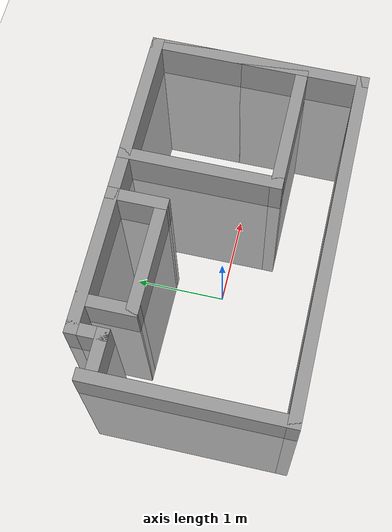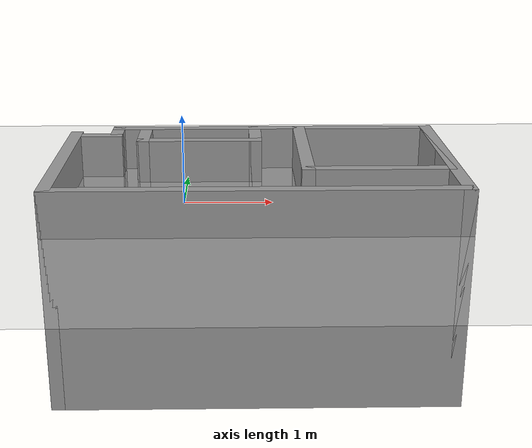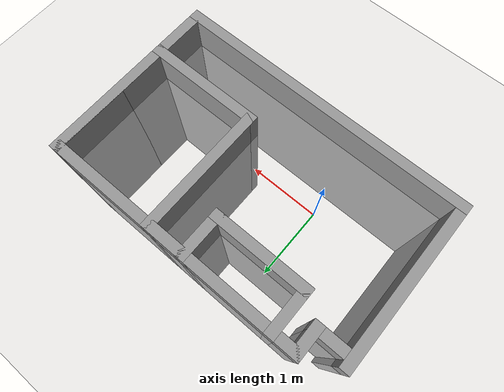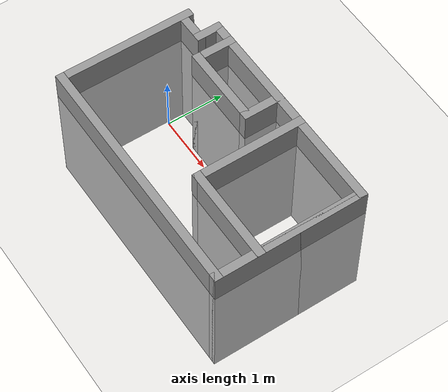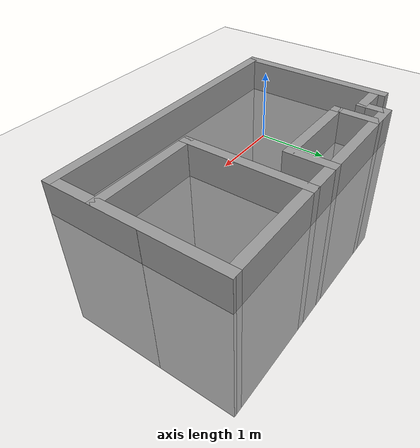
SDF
<sdf version="1.7">
 <world name="default">
  <light name="sun" type="directional">
   <pose>0 0 10 0 -0 0</pose>
   <diffuse>0.8 0.8 0.8 1</diffuse>
   <specular>0.2 0.2 0.2 1</specular>
   <attenuation>
    <range>1000</range>
    <constant>0.9</constant>
    <linear>0.01</linear>
    <quadratic>0.001</quadratic>
   </attenuation>
   <direction>-0.5 0.1 -0.9</direction>
   <spot><inner_angle>0</inner_angle><outer_angle>0</outer_angle><falloff>0</falloff></spot>
  </light>
  <model name="ground_plane">
   <static>1</static>
   <link name="link">
    <collision name="collision">
     <geometry><plane><normal>0 0 1</normal><size>100 100</size></plane></geometry>
     <surface>
      <contact><collide_bitmask>65535</collide_bitmask></contact>
      <friction><ode><mu>100</mu><mu2>50</mu2></ode></friction>
     </surface>
    </collision>
    <visual name="visual">
     <cast_shadows>0</cast_shadows>
     <geometry><plane><normal>0 0 1</normal><size>100 100</size></plane></geometry>
     <material>
      <script><uri>file://media/materials/scripts/gazebo.material</uri><name>Gazebo/Grey</name></script>
     </material>
    </visual>
   </link>
  </model>
  <gravity>0 0 -9.8</gravity>
  <magnetic_field>6e-06 2.3e-05 -4.2e-05</magnetic_field>
  <atmosphere type="adiabatic"/>
  <physics type="ode">
   <max_step_size>0.001</max_step_size>
   <real_time_factor>1</real_time_factor>
   <real_time_update_rate>1000</real_time_update_rate>
  </physics>
  <scene><ambient>0.4 0.4 0.4 1</ambient><background>0.7 0.7 0.7 1</background><shadows>1</shadows></scene>
  <spherical_coordinates>
   <surface_model>EARTH_WGS84</surface_model>
   <latitude_deg>0</latitude_deg>
   <longitude_deg>0</longitude_deg>
   <elevation>0</elevation>
   <heading_deg>0</heading_deg>
  </spherical_coordinates>
  <model name="halfapartment">
   <pose>0.802924 0.973567 -2 0 -0 0</pose>
   <link name="Wall_16">
    <collision name="Wall_16_Collision">
     <geometry><box><size>2 0.15 2.5</size></box></geometry>
     <pose>0 0 1.25 0 -0 0</pose>
    </collision>
    <visual name="Wall_16_Visual">
     <pose>0 0 1.25 0 -0 0</pose>
     <geometry><box><size>2 0.15 2.5</size></box></geometry>
     <material>
      <script><uri>file://media/materials/scripts/gazebo.material</uri><name>Gazebo/Grey</name></script>
      <ambient>1 1 1 1</ambient>
     </material>
     <meta><layer>0</layer></meta>
    </visual>
    <pose>2.175 -0.3925 0 0 -0 -1.5708</pose>
   </link>
   <link name="Wall_17">
    <collision name="Wall_17_Collision">
     <geometry><box><size>1.75 0.15 2.5</size></box></geometry>
     <pose>0 0 1.25 0 -0 0</pose>
    </collision>
    <visual name="Wall_17_Visual">
     <pose>0 0 1.25 0 -0 0</pose>
     <geometry><box><size>1.75 0.15 2.5</size></box></geometry>
     <material>
      <script><uri>file://media/materials/scripts/gazebo.material</uri><name>Gazebo/Grey</name></script>
      <ambient>1 1 1 1</ambient>
     </material>
     <meta><layer>0</layer></meta>
    </visual>
    <pose>1.375 -1.3175 0 0 -0 3.14159</pose>
   </link>
   <link name="Wall_18">
    <collision name="Wall_18_Collision">
     <geometry><box><size>2 0.15 2.5</size></box></geometry>
     <pose>0 0 1.25 0 -0 0</pose>
    </collision>
    <visual name="Wall_18_Visual">
     <pose>0 0 1.25 0 -0 0</pose>
     <geometry><box><size>2 0.15 2.5</size></box></geometry>
     <material>
      <script><uri>file://media/materials/scripts/gazebo.material</uri><name>Gazebo/Grey</name></script>
      <ambient>1 1 1 1</ambient>
     </material>
     <meta><layer>0</layer></meta>
    </visual>
    <pose>0.575 -0.3925 0 0 -0 1.5708</pose>
   </link>
   <link name="Wall_3">
    <collision name="Wall_3_Collision">
     <geometry><box><size>4.5 0.15 2.5</size></box></geometry>
     <pose>0 0 1.25 0 -0 0</pose>
    </collision>
    <visual name="Wall_3_Visual">
     <pose>0 0 1.25 0 -0 0</pose>
     <geometry><box><size>4.5 0.15 2.5</size></box></geometry>
     <material>
      <script><uri>file://media/materials/scripts/gazebo.material</uri><name>Gazebo/Grey</name></script>
      <ambient>1 1 1 1</ambient>
     </material>
     <meta><layer>0</layer></meta>
    </visual>
    <pose>-0 -2.0675 0 0 -0 0</pose>
   </link>
   <link name="Wall_37">
    <collision name="Wall_37_Collision">
     <geometry><box><size>0.75 0.15 2.5</size></box></geometry>
     <pose>0 0 1.25 0 -0 0</pose>
    </collision>
    <visual name="Wall_37_Visual">
     <pose>0 0 1.25 0 -0 0</pose>
     <geometry><box><size>0.75 0.15 2.5</size></box></geometry>
     <material>
      <script><uri>file://media/materials/scripts/gazebo.material</uri><name>Gazebo/Grey</name></script>
      <ambient>1 1 1 1</ambient>
     </material>
     <meta><layer>0</layer></meta>
    </visual>
    <pose>-1.3284 0.232656 0 0 -0 -1.5708</pose>
   </link>
   <link name="Wall_38">
    <collision name="Wall_38_Collision">
     <geometry><box><size>1.5 0.15 2.5</size></box></geometry>
     <pose>0 0 1.25 0 -0 0</pose>
    </collision>
    <visual name="Wall_38_Visual">
     <pose>0 0 1.25 0 -0 0</pose>
     <geometry><box><size>1.5 0.15 2.5</size></box></geometry>
     <material>
      <script><uri>file://media/materials/scripts/gazebo.material</uri><name>Gazebo/Grey</name></script>
      <ambient>1 1 1 1</ambient>
     </material>
     <meta><layer>0</layer></meta>
    </visual>
    <pose>-0.653396 -0.067344 0 0 -0 0</pose>
   </link>
   <link name="Wall_4">
    <collision name="Wall_4_Collision">
     <geometry><box><size>2.75 0.15 2.5</size></box></geometry>
     <pose>0 0 1.25 0 -0 0</pose>
    </collision>
    <visual name="Wall_4_Visual">
     <pose>0 0 1.25 0 -0 0</pose>
     <geometry><box><size>2.75 0.15 2.5</size></box></geometry>
     <material>
      <script><uri>file://media/materials/scripts/gazebo.material</uri><name>Gazebo/Grey</name></script>
      <ambient>1 1 1 1</ambient>
     </material>
     <meta><layer>0</layer></meta>
    </visual>
    <pose>2.175 -0.7675 0 0 -0 1.5708</pose>
   </link>
   <link name="Wall_40">
    <collision name="Wall_40_Collision">
     <geometry><box><size>0.75 0.15 2.5</size></box></geometry>
     <pose>0 0 1.25 0 -0 0</pose>
    </collision>
    <visual name="Wall_40_Visual">
     <pose>0 0 1.25 0 -0 0</pose>
     <geometry><box><size>0.75 0.15 2.5</size></box></geometry>
     <material>
      <script><uri>file://media/materials/scripts/gazebo.material</uri><name>Gazebo/Grey</name></script>
      <ambient>1 1 1 1</ambient>
     </material>
     <meta><layer>0</layer></meta>
    </visual>
    <pose>0.021604 0.232656 0 0 -0 1.5708</pose>
   </link>
   <link name="Wall_45">
    <collision name="Wall_45_Collision">
     <geometry><box><size>2.5 0.15 2.5</size></box></geometry>
     <pose>0 0 1.25 0 -0 0</pose>
    </collision>
    <visual name="Wall_45_Visual">
     <pose>0 0 1.25 0 -0 0</pose>
     <geometry><box><size>2.5 0.15 2.5</size></box></geometry>
     <material>
      <script><uri>file://media/materials/scripts/gazebo.material</uri><name>Gazebo/Grey</name></script>
      <ambient>1 1 1 1</ambient>
     </material>
     <meta><layer>0</layer></meta>
    </visual>
    <pose>-2.175 -0.8925 0 0 -0 1.5708</pose>
   </link>
   <link name="Wall_5">
    <collision name="Wall_5_Collision">
     <geometry><box><size>4 0.15 2.5</size></box></geometry>
     <pose>0 0 1.25 0 -0 0</pose>
    </collision>
    <visual name="Wall_5_Visual">
     <pose>0 0 1.25 0 -0 0</pose>
     <geometry><box><size>4 0.15 2.5</size></box></geometry>
     <material>
      <script><uri>file://media/materials/scripts/gazebo.material</uri><name>Gazebo/Grey</name></script>
      <ambient>1 1 1 1</ambient>
     </material>
     <meta><layer>0</layer></meta>
    </visual>
    <pose>0.25 0.5325 0 0 -0 3.14159</pose>
   </link>
   <link name="Wall_6">
    <collision name="Wall_6_Collision">
     <geometry><box><size>0.5 0.15 2.5</size></box></geometry>
     <pose>0 0 1.25 0 -0 0</pose>
    </collision>
    <visual name="Wall_6_Visual">
     <pose>0 0 1.25 0 -0 0</pose>
     <geometry><box><size>0.5 0.15 2.5</size></box></geometry>
     <material>
      <script><uri>file://media/materials/scripts/gazebo.material</uri><name>Gazebo/Grey</name></script>
      <ambient>1 1 1 1</ambient>
     </material>
     <meta><layer>0</layer></meta>
    </visual>
    <pose>-1.675 0.3575 0 0 -0 -1.5708</pose>
   </link>
   <link name="Wall_7">
    <collision name="Wall_7_Collision">
     <geometry><box><size>0.5 0.15 2.5</size></box></geometry>
     <pose>0 0 1.25 0 -0 0</pose>
    </collision>
    <visual name="Wall_7_Visual">
     <pose>0 0 1.25 0 -0 0</pose>
     <geometry><box><size>0.5 0.15 2.5</size></box></geometry>
     <material>
      <script><uri>file://media/materials/scripts/gazebo.material</uri><name>Gazebo/Grey</name></script>
      <ambient>1 1 1 1</ambient>
     </material>
     <meta><layer>0</layer></meta>
    </visual>
    <pose>-1.85 0.1825 0 0 -0 3.14159</pose>
   </link>
   <static>1</static>
  </model>
 </world>
</sdf>
